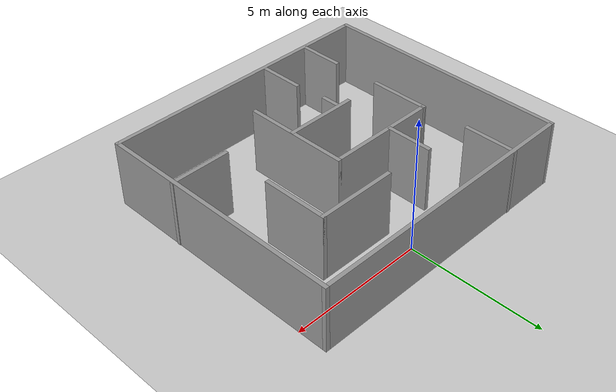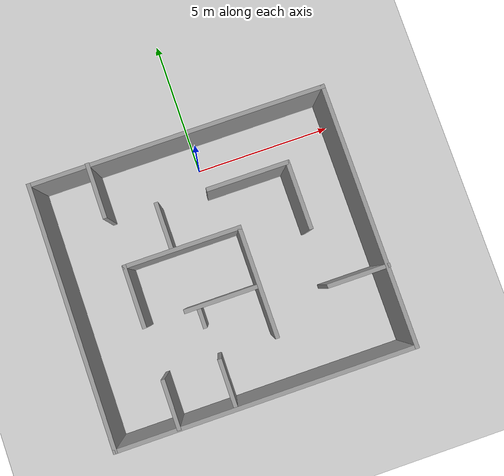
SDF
<sdf version="1.7">
 <world name="default">
  <light name="sun" type="directional">
   <pose>0 0 10 0 -0 0</pose>
   <diffuse>0.8 0.8 0.8 1</diffuse>
   <specular>0.2 0.2 0.2 1</specular>
   <attenuation>
    <range>1000</range>
    <constant>0.9</constant>
    <linear>0.01</linear>
    <quadratic>0.001</quadratic>
   </attenuation>
   <direction>-0.5 0.1 -0.9</direction>
   <spot><inner_angle>0</inner_angle><outer_angle>0</outer_angle><falloff>0</falloff></spot>
  </light>
  <model name="ground_plane">
   <static>1</static>
   <link name="link">
    <collision name="collision">
     <geometry><plane><normal>0 0 1</normal><size>100 100</size></plane></geometry>
     <surface>
      <contact><collide_bitmask>65535</collide_bitmask></contact>
      <friction><ode><mu>100</mu><mu2>50</mu2></ode></friction>
     </surface>
    </collision>
    <visual name="visual">
     <cast_shadows>0</cast_shadows>
     <geometry><plane><normal>0 0 1</normal><size>100 100</size></plane></geometry>
     <material>
      <script><uri>file://media/materials/scripts/gazebo.material</uri><name>Gazebo/Grey</name></script>
     </material>
    </visual>
   </link>
  </model>
  <gravity>0 0 -9.8</gravity>
  <magnetic_field>6e-06 2.3e-05 -4.2e-05</magnetic_field>
  <atmosphere type="adiabatic"/>
  <physics type="ode">
   <real_time_update_rate>1000.0</real_time_update_rate>
   <max_step_size>0.003</max_step_size>
   <real_time_factor>1</real_time_factor>
  </physics>
  <scene><ambient>0.4 0.4 0.4 1</ambient><background>0.7 0.7 0.7 1</background><shadows>1</shadows></scene>
  <spherical_coordinates>
   <surface_model>EARTH_WGS84</surface_model>
   <latitude_deg>0</latitude_deg>
   <longitude_deg>0</longitude_deg>
   <elevation>0</elevation>
   <heading_deg>0</heading_deg>
  </spherical_coordinates>
  <model name="palced3">
   <pose>-0.391723 -3.63938 0 0 -0 0</pose>
   <link name="Wall_0">
    <collision name="Wall_0_Collision">
     <geometry><box><size>9.5 0.15 2.5</size></box></geometry>
     <pose>0 0 1.25 0 -0 0</pose>
    </collision>
    <visual name="Wall_0_Visual">
     <pose>0 0 1.25 0 -0 0</pose>
     <geometry><box><size>9.5 0.15 2.5</size></box></geometry>
     <material>
      <script><uri>file://media/materials/scripts/gazebo.material</uri><name>Gazebo/Grey</name></script>
      <ambient>1 1 1 1</ambient>
     </material>
     <meta><layer>0</layer></meta>
    </visual>
    <pose>-5.31156 -0.011565 0 0 -0 -1.5708</pose>
   </link>
   <link name="Wall_1">
    <collision name="Wall_1_Collision">
     <geometry><box><size>10.75 0.15 2.5</size></box></geometry>
     <pose>0 0 1.25 0 -0 0</pose>
    </collision>
    <visual name="Wall_1_Visual">
     <pose>0 0 1.25 0 -0 0</pose>
     <geometry><box><size>10.75 0.15 2.5</size></box></geometry>
     <material>
      <script><uri>file://media/materials/scripts/gazebo.material</uri><name>Gazebo/Grey</name></script>
      <ambient>1 1 1 1</ambient>
     </material>
     <meta><layer>0</layer></meta>
    </visual>
    <pose>-0.011556 -4.68656 0 0 -0 0</pose>
   </link>
   <link name="Wall_10">
    <collision name="Wall_10_Collision">
     <geometry><box><size>1.75 0.15 2.5</size></box></geometry>
     <pose>0 0 1.25 0 -0 0</pose>
    </collision>
    <visual name="Wall_10_Visual">
     <pose>0 0 1.25 0 -0 0</pose>
     <geometry><box><size>1.75 0.15 2.5</size></box></geometry>
     <material>
      <script><uri>file://media/materials/scripts/gazebo.material</uri><name>Gazebo/Grey</name></script>
      <ambient>1 1 1 1</ambient>
     </material>
     <meta><layer>0</layer></meta>
    </visual>
    <pose>-1.07207 -3.82042 0 0 -0 -1.5708</pose>
   </link>
   <link name="Wall_12">
    <collision name="Wall_12_Collision">
     <geometry><box><size>2.25 0.15 2.5</size></box></geometry>
     <pose>0 0 1.25 0 -0 0</pose>
    </collision>
    <visual name="Wall_12_Visual">
     <pose>0 0 1.25 0 -0 0</pose>
     <geometry><box><size>2.25 0.15 2.5</size></box></geometry>
     <material>
      <script><uri>file://media/materials/scripts/gazebo.material</uri><name>Gazebo/Grey</name></script>
      <ambient>1 1 1 1</ambient>
     </material>
     <meta><layer>0</layer></meta>
    </visual>
    <pose>-3.10937 -0.055199 0 0 -0 1.5708</pose>
   </link>
   <link name="Wall_13">
    <collision name="Wall_13_Collision">
     <geometry><box><size>4.25 0.15 2.5</size></box></geometry>
     <pose>0 0 1.25 0 -0 0</pose>
    </collision>
    <visual name="Wall_13_Visual">
     <pose>0 0 1.25 0 -0 0</pose>
     <geometry><box><size>4.25 0.15 2.5</size></box></geometry>
     <material>
      <script><uri>file://media/materials/scripts/gazebo.material</uri><name>Gazebo/Grey</name></script>
      <ambient>1 1 1 1</ambient>
     </material>
     <meta><layer>0</layer></meta>
    </visual>
    <pose>-1.05937 0.994801 0 0 -0 0</pose>
   </link>
   <link name="Wall_14">
    <collision name="Wall_14_Collision">
     <geometry><box><size>4 0.15 2.5</size></box></geometry>
     <pose>0 0 1.25 0 -0 0</pose>
    </collision>
    <visual name="Wall_14_Visual">
     <pose>0 0 1.25 0 -0 0</pose>
     <geometry><box><size>4 0.15 2.5</size></box></geometry>
     <material>
      <script><uri>file://media/materials/scripts/gazebo.material</uri><name>Gazebo/Grey</name></script>
      <ambient>1 1 1 1</ambient>
     </material>
     <meta><layer>0</layer></meta>
    </visual>
    <pose>0.990632 -0.930199 0 0 -0 -1.5708</pose>
   </link>
   <link name="Wall_16">
    <collision name="Wall_16_Collision">
     <geometry><box><size>2.75 0.15 2.5</size></box></geometry>
     <pose>0 0 1.25 0 -0 0</pose>
    </collision>
    <visual name="Wall_16_Visual">
     <pose>0 0 1.25 0 -0 0</pose>
     <geometry><box><size>2.75 0.15 2.5</size></box></geometry>
     <material>
      <script><uri>file://media/materials/scripts/gazebo.material</uri><name>Gazebo/Grey</name></script>
      <ambient>1 1 1 1</ambient>
     </material>
     <meta><layer>0</layer></meta>
    </visual>
    <pose>-0.317469 -1.08052 0 0 -0 3.14159</pose>
   </link>
   <link name="Wall_18">
    <collision name="Wall_18_Collision">
     <geometry><box><size>0.75 0.15 2.5</size></box></geometry>
     <pose>0 0 1.25 0 -0 0</pose>
    </collision>
    <visual name="Wall_18_Visual">
     <pose>0 0 1.25 0 -0 0</pose>
     <geometry><box><size>0.75 0.15 2.5</size></box></geometry>
     <material>
      <script><uri>file://media/materials/scripts/gazebo.material</uri><name>Gazebo/Grey</name></script>
      <ambient>1 1 1 1</ambient>
     </material>
     <meta><layer>0</layer></meta>
    </visual>
    <pose>-1.18377 -1.45656 0 0 -0 -1.5708</pose>
   </link>
   <link name="Wall_2">
    <collision name="Wall_2_Collision">
     <geometry><box><size>9.5 0.15 2.5</size></box></geometry>
     <pose>0 0 1.25 0 -0 0</pose>
    </collision>
    <visual name="Wall_2_Visual">
     <pose>0 0 1.25 0 -0 0</pose>
     <geometry><box><size>9.5 0.15 2.5</size></box></geometry>
     <material>
      <script><uri>file://media/materials/scripts/gazebo.material</uri><name>Gazebo/Grey</name></script>
      <ambient>1 1 1 1</ambient>
     </material>
     <meta><layer>0</layer></meta>
    </visual>
    <pose>5.28844 -0.011565 0 0 -0 1.5708</pose>
   </link>
   <link name="Wall_22">
    <collision name="Wall_22_Collision">
     <geometry><box><size>2.25 0.15 2.5</size></box></geometry>
     <pose>0 0 1.25 0 -0 0</pose>
    </collision>
    <visual name="Wall_22_Visual">
     <pose>0 0 1.25 0 -0 0</pose>
     <geometry><box><size>2.25 0.15 2.5</size></box></geometry>
     <material>
      <script><uri>file://media/materials/scripts/gazebo.material</uri><name>Gazebo/Grey</name></script>
      <ambient>1 1 1 1</ambient>
     </material>
     <meta><layer>0</layer></meta>
    </visual>
    <pose>4.26156 -1.84096 0 0 -0 0</pose>
   </link>
   <link name="Wall_24">
    <collision name="Wall_24_Collision">
     <geometry><box><size>3 0.15 2.5</size></box></geometry>
     <pose>0 0 1.25 0 -0 0</pose>
    </collision>
    <visual name="Wall_24_Visual">
     <pose>0 0 1.25 0 -0 0</pose>
     <geometry><box><size>3 0.15 2.5</size></box></geometry>
     <material>
      <script><uri>file://media/materials/scripts/gazebo.material</uri><name>Gazebo/Grey</name></script>
      <ambient>1 1 1 1</ambient>
     </material>
     <meta><layer>0</layer></meta>
    </visual>
    <pose>1.84803 2.57222 0 0 -0 0</pose>
   </link>
   <link name="Wall_25">
    <collision name="Wall_25_Collision">
     <geometry><box><size>2.5 0.15 2.5</size></box></geometry>
     <pose>0 0 1.25 0 -0 0</pose>
    </collision>
    <visual name="Wall_25_Visual">
     <pose>0 0 1.25 0 -0 0</pose>
     <geometry><box><size>2.5 0.15 2.5</size></box></geometry>
     <material>
      <script><uri>file://media/materials/scripts/gazebo.material</uri><name>Gazebo/Grey</name></script>
      <ambient>1 1 1 1</ambient>
     </material>
     <meta><layer>0</layer></meta>
    </visual>
    <pose>3.27303 1.39722 0 0 -0 -1.5708</pose>
   </link>
   <link name="Wall_29">
    <collision name="Wall_29_Collision">
     <geometry><box><size>1.75 0.15 2.5</size></box></geometry>
     <pose>0 0 1.25 0 -0 0</pose>
    </collision>
    <visual name="Wall_29_Visual">
     <pose>0 0 1.25 0 -0 0</pose>
     <geometry><box><size>1.75 0.15 2.5</size></box></geometry>
     <material>
      <script><uri>file://media/materials/scripts/gazebo.material</uri><name>Gazebo/Grey</name></script>
      <ambient>1 1 1 1</ambient>
     </material>
     <meta><layer>0</layer></meta>
    </visual>
    <pose>-1.41495 1.84746 0 0 -0 1.5708</pose>
   </link>
   <link name="Wall_4">
    <collision name="Wall_4_Collision">
     <geometry><box><size>10.75 0.15 2.5</size></box></geometry>
     <pose>0 0 1.25 0 -0 0</pose>
    </collision>
    <visual name="Wall_4_Visual">
     <pose>0 0 1.25 0 -0 0</pose>
     <geometry><box><size>10.75 0.15 2.5</size></box></geometry>
     <material>
      <script><uri>file://media/materials/scripts/gazebo.material</uri><name>Gazebo/Grey</name></script>
      <ambient>1 1 1 1</ambient>
     </material>
     <meta><layer>0</layer></meta>
    </visual>
    <pose>-0.011556 4.66343 0 0 -0 0</pose>
   </link>
   <link name="Wall_6">
    <collision name="Wall_6_Collision">
     <geometry><box><size>2 0.15 2.5</size></box></geometry>
     <pose>0 0 1.25 0 -0 0</pose>
    </collision>
    <visual name="Wall_6_Visual">
     <pose>0 0 1.25 0 -0 0</pose>
     <geometry><box><size>2 0.15 2.5</size></box></geometry>
     <material>
      <script><uri>file://media/materials/scripts/gazebo.material</uri><name>Gazebo/Grey</name></script>
      <ambient>1 1 1 1</ambient>
     </material>
     <meta><layer>0</layer></meta>
    </visual>
    <pose>-3.20667 3.76157 0 0 -0 -1.5708</pose>
   </link>
   <link name="Wall_8">
    <collision name="Wall_8_Collision">
     <geometry><box><size>1.75 0.15 2.5</size></box></geometry>
     <pose>0 0 1.25 0 -0 0</pose>
    </collision>
    <visual name="Wall_8_Visual">
     <pose>0 0 1.25 0 -0 0</pose>
     <geometry><box><size>1.75 0.15 2.5</size></box></geometry>
     <material>
      <script><uri>file://media/materials/scripts/gazebo.material</uri><name>Gazebo/Grey</name></script>
      <ambient>1 1 1 1</ambient>
     </material>
     <meta><layer>0</layer></meta>
    </visual>
    <pose>-3.08106 -3.84564 0 0 -0 -1.5708</pose>
   </link>
   <static>1</static>
  </model>
 </world>
</sdf>
